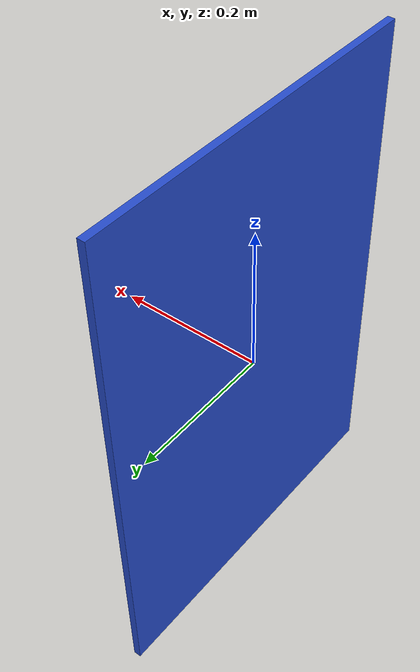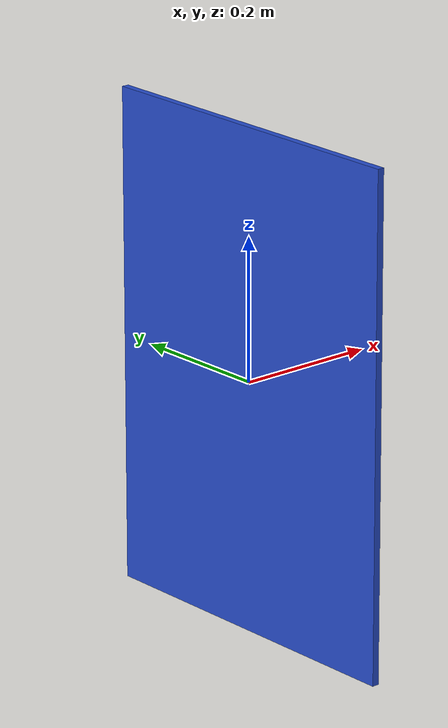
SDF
<?xml version="1.0" ?>
<sdf version="1.6">
  <model name="blue_box_img_small">
    <link name="link">
      <collision name="collision">
        <geometry>
          <box>
            <size>0.01 0.5 0.7</size>
          </box>
        </geometry>
      </collision>
      <visual name="visual">
        <geometry>
          <box>
            <size>0.01 0.5 0.7</size>
          </box>
        </geometry>
        <material>
          <script>
            <uri>model://blue_box_img_small/materials/scripts</uri>
            <uri>model://blue_box_img_small/materials/textures</uri>
            <name>vrc/blue_box_img_small</name>
          </script>
        </material>
      </visual>
    </link>

  </model>
</sdf>
